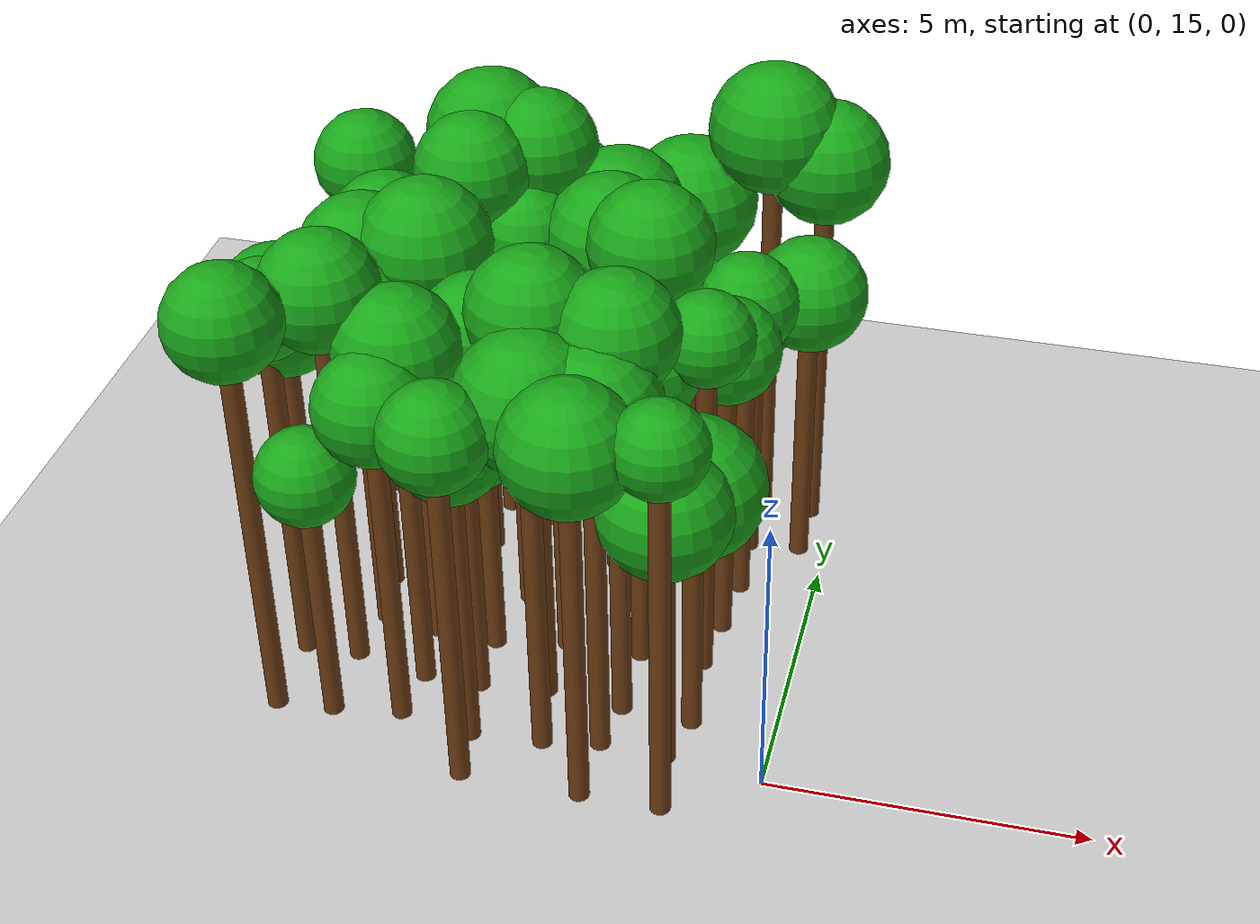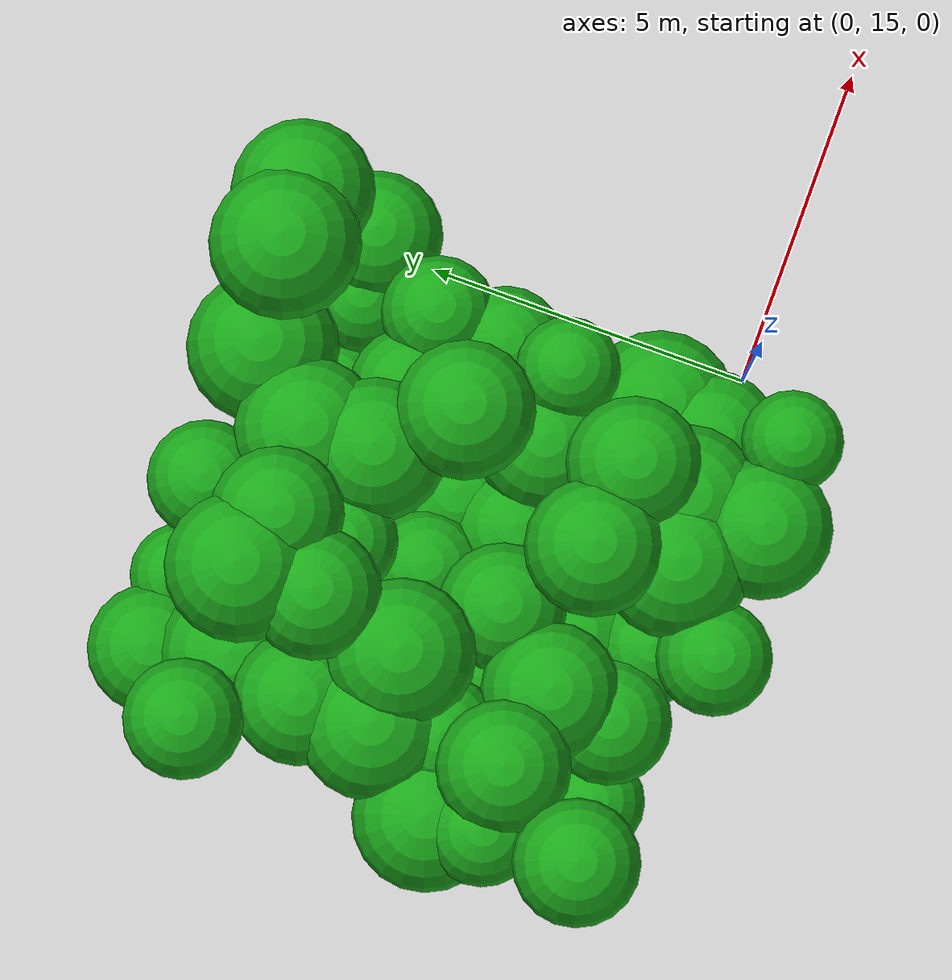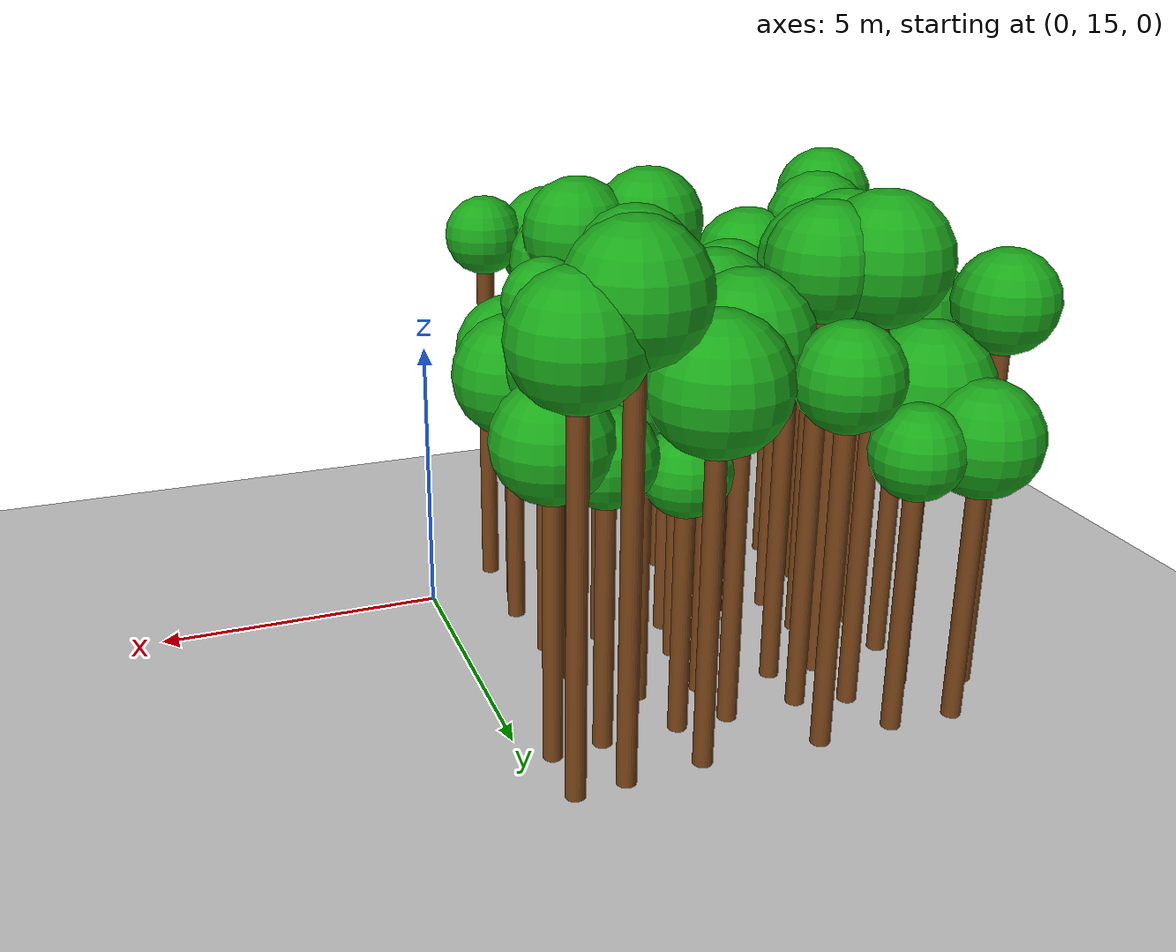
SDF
<sdf version="1.6">
 <world name="forest_world">
  <include><uri>model://sun</uri></include>
  <include><uri>model://ground_plane</uri></include>
  <model name="tree_1141_trunk">
   <static>true</static>
   <pose>-7.84 15.01 3.36 0 0 0</pose>
   <link name="link">
    <collision name="collision">
     <geometry><cylinder><radius>0.16</radius><length>6.73</length></cylinder></geometry>
    </collision>
    <visual name="visual">
     <geometry><cylinder><radius>0.16</radius><length>6.73</length></cylinder></geometry>
     <material><ambient>0.35 0.20 0.05 1</ambient><diffuse>0.45 0.25 0.08 1</diffuse></material>
    </visual>
   </link>
  </model>
  <model name="tree_1141_leaf">
   <static>true</static>
   <pose>-7.84 15.01 7.26 0 0 0</pose>
   <link name="link">
    <collision name="collision"><geometry><sphere><radius>0.88</radius></sphere></geometry></collision>
    <visual name="visual">
     <geometry><sphere><radius>0.88</radius></sphere></geometry>
     <material><ambient>0.05 0.45 0.05 1</ambient><diffuse>0.10 0.65 0.10 1</diffuse></material>
    </visual>
   </link>
  </model>
  <model name="tree_1142_trunk">
   <static>true</static>
   <pose>-7.85 16.36 3.07 0 0 0</pose>
   <link name="link">
    <collision name="collision">
     <geometry><cylinder><radius>0.16</radius><length>6.15</length></cylinder></geometry>
    </collision>
    <visual name="visual">
     <geometry><cylinder><radius>0.16</radius><length>6.15</length></cylinder></geometry>
     <material><ambient>0.35 0.20 0.05 1</ambient><diffuse>0.45 0.25 0.08 1</diffuse></material>
    </visual>
   </link>
  </model>
  <model name="tree_1142_leaf">
   <static>true</static>
   <pose>-7.85 16.36 6.61 0 0 0</pose>
   <link name="link">
    <collision name="collision"><geometry><sphere><radius>0.78</radius></sphere></geometry></collision>
    <visual name="visual">
     <geometry><sphere><radius>0.78</radius></sphere></geometry>
     <material><ambient>0.05 0.45 0.05 1</ambient><diffuse>0.10 0.65 0.10 1</diffuse></material>
    </visual>
   </link>
  </model>
  <model name="tree_1143_trunk">
   <static>true</static>
   <pose>-7.94 17.15 2.73 0 0 0</pose>
   <link name="link">
    <collision name="collision">
     <geometry><cylinder><radius>0.16</radius><length>5.45</length></cylinder></geometry>
    </collision>
    <visual name="visual">
     <geometry><cylinder><radius>0.16</radius><length>5.45</length></cylinder></geometry>
     <material><ambient>0.35 0.20 0.05 1</ambient><diffuse>0.45 0.25 0.08 1</diffuse></material>
    </visual>
   </link>
  </model>
  <model name="tree_1143_leaf">
   <static>true</static>
   <pose>-7.94 17.15 6.08 0 0 0</pose>
   <link name="link">
    <collision name="collision"><geometry><sphere><radius>1.04</radius></sphere></geometry></collision>
    <visual name="visual">
     <geometry><sphere><radius>1.04</radius></sphere></geometry>
     <material><ambient>0.05 0.45 0.05 1</ambient><diffuse>0.10 0.65 0.10 1</diffuse></material>
    </visual>
   </link>
  </model>
  <model name="tree_1146_trunk">
   <static>true</static>
   <pose>-7.82 20.73 3.08 0 0 0</pose>
   <link name="link">
    <collision name="collision">
     <geometry><cylinder><radius>0.16</radius><length>6.17</length></cylinder></geometry>
    </collision>
    <visual name="visual">
     <geometry><cylinder><radius>0.16</radius><length>6.17</length></cylinder></geometry>
     <material><ambient>0.35 0.20 0.05 1</ambient><diffuse>0.45 0.25 0.08 1</diffuse></material>
    </visual>
   </link>
  </model>
  <model name="tree_1146_leaf">
   <static>true</static>
   <pose>-7.82 20.73 6.67 0 0 0</pose>
   <link name="link">
    <collision name="collision"><geometry><sphere><radius>0.84</radius></sphere></geometry></collision>
    <visual name="visual">
     <geometry><sphere><radius>0.84</radius></sphere></geometry>
     <material><ambient>0.05 0.45 0.05 1</ambient><diffuse>0.10 0.65 0.10 1</diffuse></material>
    </visual>
   </link>
  </model>
  <model name="tree_1196_trunk">
   <static>true</static>
   <pose>-6.92 15.07 2.10 0 0 0</pose>
   <link name="link">
    <collision name="collision">
     <geometry><cylinder><radius>0.16</radius><length>4.20</length></cylinder></geometry>
    </collision>
    <visual name="visual">
     <geometry><cylinder><radius>0.16</radius><length>4.20</length></cylinder></geometry>
     <material><ambient>0.35 0.20 0.05 1</ambient><diffuse>0.45 0.25 0.08 1</diffuse></material>
    </visual>
   </link>
  </model>
  <model name="tree_1196_leaf">
   <static>true</static>
   <pose>-6.92 15.07 4.66 0 0 0</pose>
   <link name="link">
    <collision name="collision"><geometry><sphere><radius>0.76</radius></sphere></geometry></collision>
    <visual name="visual">
     <geometry><sphere><radius>0.76</radius></sphere></geometry>
     <material><ambient>0.05 0.45 0.05 1</ambient><diffuse>0.10 0.65 0.10 1</diffuse></material>
    </visual>
   </link>
  </model>
  <model name="tree_1197_trunk">
   <static>true</static>
   <pose>-6.96 16.38 3.24 0 0 0</pose>
   <link name="link">
    <collision name="collision">
     <geometry><cylinder><radius>0.16</radius><length>6.49</length></cylinder></geometry>
    </collision>
    <visual name="visual">
     <geometry><cylinder><radius>0.16</radius><length>6.49</length></cylinder></geometry>
     <material><ambient>0.35 0.20 0.05 1</ambient><diffuse>0.45 0.25 0.08 1</diffuse></material>
    </visual>
   </link>
  </model>
  <model name="tree_1197_leaf">
   <static>true</static>
   <pose>-6.96 16.38 7.05 0 0 0</pose>
   <link name="link">
    <collision name="collision"><geometry><sphere><radius>0.93</radius></sphere></geometry></collision>
    <visual name="visual">
     <geometry><sphere><radius>0.93</radius></sphere></geometry>
     <material><ambient>0.05 0.45 0.05 1</ambient><diffuse>0.10 0.65 0.10 1</diffuse></material>
    </visual>
   </link>
  </model>
  <model name="tree_1198_trunk">
   <static>true</static>
   <pose>-6.82 17.35 2.87 0 0 0</pose>
   <link name="link">
    <collision name="collision">
     <geometry><cylinder><radius>0.16</radius><length>5.75</length></cylinder></geometry>
    </collision>
    <visual name="visual">
     <geometry><cylinder><radius>0.16</radius><length>5.75</length></cylinder></geometry>
     <material><ambient>0.35 0.20 0.05 1</ambient><diffuse>0.45 0.25 0.08 1</diffuse></material>
    </visual>
   </link>
  </model>
  <model name="tree_1198_leaf">
   <static>true</static>
   <pose>-6.82 17.35 6.26 0 0 0</pose>
   <link name="link">
    <collision name="collision"><geometry><sphere><radius>0.85</radius></sphere></geometry></collision>
    <visual name="visual">
     <geometry><sphere><radius>0.85</radius></sphere></geometry>
     <material><ambient>0.05 0.45 0.05 1</ambient><diffuse>0.10 0.65 0.10 1</diffuse></material>
    </visual>
   </link>
  </model>
  <model name="tree_1199_trunk">
   <static>true</static>
   <pose>-7.01 18.27 2.90 0 0 0</pose>
   <link name="link">
    <collision name="collision">
     <geometry><cylinder><radius>0.16</radius><length>5.80</length></cylinder></geometry>
    </collision>
    <visual name="visual">
     <geometry><cylinder><radius>0.16</radius><length>5.80</length></cylinder></geometry>
     <material><ambient>0.35 0.20 0.05 1</ambient><diffuse>0.45 0.25 0.08 1</diffuse></material>
    </visual>
   </link>
  </model>
  <model name="tree_1199_leaf">
   <static>true</static>
   <pose>-7.01 18.27 6.43 0 0 0</pose>
   <link name="link">
    <collision name="collision"><geometry><sphere><radius>1.05</radius></sphere></geometry></collision>
    <visual name="visual">
     <geometry><sphere><radius>1.05</radius></sphere></geometry>
     <material><ambient>0.05 0.45 0.05 1</ambient><diffuse>0.10 0.65 0.10 1</diffuse></material>
    </visual>
   </link>
  </model>
  <model name="tree_1200_trunk">
   <static>true</static>
   <pose>-7.00 19.35 2.88 0 0 0</pose>
   <link name="link">
    <collision name="collision">
     <geometry><cylinder><radius>0.16</radius><length>5.75</length></cylinder></geometry>
    </collision>
    <visual name="visual">
     <geometry><cylinder><radius>0.16</radius><length>5.75</length></cylinder></geometry>
     <material><ambient>0.35 0.20 0.05 1</ambient><diffuse>0.45 0.25 0.08 1</diffuse></material>
    </visual>
   </link>
  </model>
  <model name="tree_1200_leaf">
   <static>true</static>
   <pose>-7.00 19.35 6.31 0 0 0</pose>
   <link name="link">
    <collision name="collision"><geometry><sphere><radius>0.94</radius></sphere></geometry></collision>
    <visual name="visual">
     <geometry><sphere><radius>0.94</radius></sphere></geometry>
     <material><ambient>0.05 0.45 0.05 1</ambient><diffuse>0.10 0.65 0.10 1</diffuse></material>
    </visual>
   </link>
  </model>
  <model name="tree_1201_trunk">
   <static>true</static>
   <pose>-6.72 20.47 2.33 0 0 0</pose>
   <link name="link">
    <collision name="collision">
     <geometry><cylinder><radius>0.16</radius><length>4.67</length></cylinder></geometry>
    </collision>
    <visual name="visual">
     <geometry><cylinder><radius>0.16</radius><length>4.67</length></cylinder></geometry>
     <material><ambient>0.35 0.20 0.05 1</ambient><diffuse>0.45 0.25 0.08 1</diffuse></material>
    </visual>
   </link>
  </model>
  <model name="tree_1201_leaf">
   <static>true</static>
   <pose>-6.72 20.47 5.32 0 0 0</pose>
   <link name="link">
    <collision name="collision"><geometry><sphere><radius>1.08</radius></sphere></geometry></collision>
    <visual name="visual">
     <geometry><sphere><radius>1.08</radius></sphere></geometry>
     <material><ambient>0.05 0.45 0.05 1</ambient><diffuse>0.10 0.65 0.10 1</diffuse></material>
    </visual>
   </link>
  </model>
  <model name="tree_1202_trunk">
   <static>true</static>
   <pose>-7.01 21.62 2.14 0 0 0</pose>
   <link name="link">
    <collision name="collision">
     <geometry><cylinder><radius>0.16</radius><length>4.28</length></cylinder></geometry>
    </collision>
    <visual name="visual">
     <geometry><cylinder><radius>0.16</radius><length>4.28</length></cylinder></geometry>
     <material><ambient>0.35 0.20 0.05 1</ambient><diffuse>0.45 0.25 0.08 1</diffuse></material>
    </visual>
   </link>
  </model>
  <model name="tree_1202_leaf">
   <static>true</static>
   <pose>-7.01 21.62 4.83 0 0 0</pose>
   <link name="link">
    <collision name="collision"><geometry><sphere><radius>0.93</radius></sphere></geometry></collision>
    <visual name="visual">
     <geometry><sphere><radius>0.93</radius></sphere></geometry>
     <material><ambient>0.05 0.45 0.05 1</ambient><diffuse>0.10 0.65 0.10 1</diffuse></material>
    </visual>
   </link>
  </model>
  <model name="tree_1251_trunk">
   <static>true</static>
   <pose>-5.84 15.23 2.72 0 0 0</pose>
   <link name="link">
    <collision name="collision">
     <geometry><cylinder><radius>0.16</radius><length>5.44</length></cylinder></geometry>
    </collision>
    <visual name="visual">
     <geometry><cylinder><radius>0.16</radius><length>5.44</length></cylinder></geometry>
     <material><ambient>0.35 0.20 0.05 1</ambient><diffuse>0.45 0.25 0.08 1</diffuse></material>
    </visual>
   </link>
  </model>
  <model name="tree_1251_leaf">
   <static>true</static>
   <pose>-5.84 15.23 5.97 0 0 0</pose>
   <link name="link">
    <collision name="collision"><geometry><sphere><radius>0.88</radius></sphere></geometry></collision>
    <visual name="visual">
     <geometry><sphere><radius>0.88</radius></sphere></geometry>
     <material><ambient>0.05 0.45 0.05 1</ambient><diffuse>0.10 0.65 0.10 1</diffuse></material>
    </visual>
   </link>
  </model>
  <model name="tree_1252_trunk">
   <static>true</static>
   <pose>-5.74 16.13 2.91 0 0 0</pose>
   <link name="link">
    <collision name="collision">
     <geometry><cylinder><radius>0.16</radius><length>5.82</length></cylinder></geometry>
    </collision>
    <visual name="visual">
     <geometry><cylinder><radius>0.16</radius><length>5.82</length></cylinder></geometry>
     <material><ambient>0.35 0.20 0.05 1</ambient><diffuse>0.45 0.25 0.08 1</diffuse></material>
    </visual>
   </link>
  </model>
  <model name="tree_1252_leaf">
   <static>true</static>
   <pose>-5.74 16.13 6.40 0 0 0</pose>
   <link name="link">
    <collision name="collision"><geometry><sphere><radius>0.97</radius></sphere></geometry></collision>
    <visual name="visual">
     <geometry><sphere><radius>0.97</radius></sphere></geometry>
     <material><ambient>0.05 0.45 0.05 1</ambient><diffuse>0.10 0.65 0.10 1</diffuse></material>
    </visual>
   </link>
  </model>
  <model name="tree_1253_trunk">
   <static>true</static>
   <pose>-5.88 17.20 2.18 0 0 0</pose>
   <link name="link">
    <collision name="collision">
     <geometry><cylinder><radius>0.16</radius><length>4.36</length></cylinder></geometry>
    </collision>
    <visual name="visual">
     <geometry><cylinder><radius>0.16</radius><length>4.36</length></cylinder></geometry>
     <material><ambient>0.35 0.20 0.05 1</ambient><diffuse>0.45 0.25 0.08 1</diffuse></material>
    </visual>
   </link>
  </model>
  <model name="tree_1253_leaf">
   <static>true</static>
   <pose>-5.88 17.20 4.79 0 0 0</pose>
   <link name="link">
    <collision name="collision"><geometry><sphere><radius>0.73</radius></sphere></geometry></collision>
    <visual name="visual">
     <geometry><sphere><radius>0.73</radius></sphere></geometry>
     <material><ambient>0.05 0.45 0.05 1</ambient><diffuse>0.10 0.65 0.10 1</diffuse></material>
    </visual>
   </link>
  </model>
  <model name="tree_1254_trunk">
   <static>true</static>
   <pose>-5.97 18.23 3.13 0 0 0</pose>
   <link name="link">
    <collision name="collision">
     <geometry><cylinder><radius>0.16</radius><length>6.25</length></cylinder></geometry>
    </collision>
    <visual name="visual">
     <geometry><cylinder><radius>0.16</radius><length>6.25</length></cylinder></geometry>
     <material><ambient>0.35 0.20 0.05 1</ambient><diffuse>0.45 0.25 0.08 1</diffuse></material>
    </visual>
   </link>
  </model>
  <model name="tree_1254_leaf">
   <static>true</static>
   <pose>-5.97 18.23 6.87 0 0 0</pose>
   <link name="link">
    <collision name="collision"><geometry><sphere><radius>1.04</radius></sphere></geometry></collision>
    <visual name="visual">
     <geometry><sphere><radius>1.04</radius></sphere></geometry>
     <material><ambient>0.05 0.45 0.05 1</ambient><diffuse>0.10 0.65 0.10 1</diffuse></material>
    </visual>
   </link>
  </model>
  <model name="tree_1255_trunk">
   <static>true</static>
   <pose>-5.62 19.59 3.43 0 0 0</pose>
   <link name="link">
    <collision name="collision">
     <geometry><cylinder><radius>0.16</radius><length>6.86</length></cylinder></geometry>
    </collision>
    <visual name="visual">
     <geometry><cylinder><radius>0.16</radius><length>6.86</length></cylinder></geometry>
     <material><ambient>0.35 0.20 0.05 1</ambient><diffuse>0.45 0.25 0.08 1</diffuse></material>
    </visual>
   </link>
  </model>
  <model name="tree_1255_leaf">
   <static>true</static>
   <pose>-5.62 19.59 7.42 0 0 0</pose>
   <link name="link">
    <collision name="collision"><geometry><sphere><radius>0.92</radius></sphere></geometry></collision>
    <visual name="visual">
     <geometry><sphere><radius>0.92</radius></sphere></geometry>
     <material><ambient>0.05 0.45 0.05 1</ambient><diffuse>0.10 0.65 0.10 1</diffuse></material>
    </visual>
   </link>
  </model>
  <model name="tree_1256_trunk">
   <static>true</static>
   <pose>-5.63 20.66 3.44 0 0 0</pose>
   <link name="link">
    <collision name="collision">
     <geometry><cylinder><radius>0.16</radius><length>6.88</length></cylinder></geometry>
    </collision>
    <visual name="visual">
     <geometry><cylinder><radius>0.16</radius><length>6.88</length></cylinder></geometry>
     <material><ambient>0.35 0.20 0.05 1</ambient><diffuse>0.45 0.25 0.08 1</diffuse></material>
    </visual>
   </link>
  </model>
  <model name="tree_1256_leaf">
   <static>true</static>
   <pose>-5.63 20.66 7.50 0 0 0</pose>
   <link name="link">
    <collision name="collision"><geometry><sphere><radius>1.04</radius></sphere></geometry></collision>
    <visual name="visual">
     <geometry><sphere><radius>1.04</radius></sphere></geometry>
     <material><ambient>0.05 0.45 0.05 1</ambient><diffuse>0.10 0.65 0.10 1</diffuse></material>
    </visual>
   </link>
  </model>
  <model name="tree_1257_trunk">
   <static>true</static>
   <pose>-5.89 21.59 2.15 0 0 0</pose>
   <link name="link">
    <collision name="collision">
     <geometry><cylinder><radius>0.16</radius><length>4.30</length></cylinder></geometry>
    </collision>
    <visual name="visual">
     <geometry><cylinder><radius>0.16</radius><length>4.30</length></cylinder></geometry>
     <material><ambient>0.35 0.20 0.05 1</ambient><diffuse>0.45 0.25 0.08 1</diffuse></material>
    </visual>
   </link>
  </model>
  <model name="tree_1257_leaf">
   <static>true</static>
   <pose>-5.89 21.59 4.75 0 0 0</pose>
   <link name="link">
    <collision name="collision"><geometry><sphere><radius>0.75</radius></sphere></geometry></collision>
    <visual name="visual">
     <geometry><sphere><radius>0.75</radius></sphere></geometry>
     <material><ambient>0.05 0.45 0.05 1</ambient><diffuse>0.10 0.65 0.10 1</diffuse></material>
    </visual>
   </link>
  </model>
  <model name="tree_1305_trunk">
   <static>true</static>
   <pose>-4.54 14.17 2.98 0 0 0</pose>
   <link name="link">
    <collision name="collision">
     <geometry><cylinder><radius>0.16</radius><length>5.96</length></cylinder></geometry>
    </collision>
    <visual name="visual">
     <geometry><cylinder><radius>0.16</radius><length>5.96</length></cylinder></geometry>
     <material><ambient>0.35 0.20 0.05 1</ambient><diffuse>0.45 0.25 0.08 1</diffuse></material>
    </visual>
   </link>
  </model>
  <model name="tree_1305_leaf">
   <static>true</static>
   <pose>-4.54 14.17 6.44 0 0 0</pose>
   <link name="link">
    <collision name="collision"><geometry><sphere><radius>0.81</radius></sphere></geometry></collision>
    <visual name="visual">
     <geometry><sphere><radius>0.81</radius></sphere></geometry>
     <material><ambient>0.05 0.45 0.05 1</ambient><diffuse>0.10 0.65 0.10 1</diffuse></material>
    </visual>
   </link>
  </model>
  <model name="tree_1306_trunk">
   <static>true</static>
   <pose>-4.64 15.02 2.55 0 0 0</pose>
   <link name="link">
    <collision name="collision">
     <geometry><cylinder><radius>0.16</radius><length>5.10</length></cylinder></geometry>
    </collision>
    <visual name="visual">
     <geometry><cylinder><radius>0.16</radius><length>5.10</length></cylinder></geometry>
     <material><ambient>0.35 0.20 0.05 1</ambient><diffuse>0.45 0.25 0.08 1</diffuse></material>
    </visual>
   </link>
  </model>
  <model name="tree_1306_leaf">
   <static>true</static>
   <pose>-4.64 15.02 5.58 0 0 0</pose>
   <link name="link">
    <collision name="collision"><geometry><sphere><radius>0.81</radius></sphere></geometry></collision>
    <visual name="visual">
     <geometry><sphere><radius>0.81</radius></sphere></geometry>
     <material><ambient>0.05 0.45 0.05 1</ambient><diffuse>0.10 0.65 0.10 1</diffuse></material>
    </visual>
   </link>
  </model>
  <model name="tree_1307_trunk">
   <static>true</static>
   <pose>-4.82 16.11 2.29 0 0 0</pose>
   <link name="link">
    <collision name="collision">
     <geometry><cylinder><radius>0.16</radius><length>4.58</length></cylinder></geometry>
    </collision>
    <visual name="visual">
     <geometry><cylinder><radius>0.16</radius><length>4.58</length></cylinder></geometry>
     <material><ambient>0.35 0.20 0.05 1</ambient><diffuse>0.45 0.25 0.08 1</diffuse></material>
    </visual>
   </link>
  </model>
  <model name="tree_1307_leaf">
   <static>true</static>
   <pose>-4.82 16.11 5.20 0 0 0</pose>
   <link name="link">
    <collision name="collision"><geometry><sphere><radius>1.04</radius></sphere></geometry></collision>
    <visual name="visual">
     <geometry><sphere><radius>1.04</radius></sphere></geometry>
     <material><ambient>0.05 0.45 0.05 1</ambient><diffuse>0.10 0.65 0.10 1</diffuse></material>
    </visual>
   </link>
  </model>
  <model name="tree_1308_trunk">
   <static>true</static>
   <pose>-4.86 17.15 2.82 0 0 0</pose>
   <link name="link">
    <collision name="collision">
     <geometry><cylinder><radius>0.16</radius><length>5.64</length></cylinder></geometry>
    </collision>
    <visual name="visual">
     <geometry><cylinder><radius>0.16</radius><length>5.64</length></cylinder></geometry>
     <material><ambient>0.35 0.20 0.05 1</ambient><diffuse>0.45 0.25 0.08 1</diffuse></material>
    </visual>
   </link>
  </model>
  <model name="tree_1308_leaf">
   <static>true</static>
   <pose>-4.86 17.15 6.18 0 0 0</pose>
   <link name="link">
    <collision name="collision"><geometry><sphere><radius>0.90</radius></sphere></geometry></collision>
    <visual name="visual">
     <geometry><sphere><radius>0.90</radius></sphere></geometry>
     <material><ambient>0.05 0.45 0.05 1</ambient><diffuse>0.10 0.65 0.10 1</diffuse></material>
    </visual>
   </link>
  </model>
  <model name="tree_1309_trunk">
   <static>true</static>
   <pose>-4.64 18.36 2.43 0 0 0</pose>
   <link name="link">
    <collision name="collision">
     <geometry><cylinder><radius>0.16</radius><length>4.86</length></cylinder></geometry>
    </collision>
    <visual name="visual">
     <geometry><cylinder><radius>0.16</radius><length>4.86</length></cylinder></geometry>
     <material><ambient>0.35 0.20 0.05 1</ambient><diffuse>0.45 0.25 0.08 1</diffuse></material>
    </visual>
   </link>
  </model>
  <model name="tree_1309_leaf">
   <static>true</static>
   <pose>-4.64 18.36 5.34 0 0 0</pose>
   <link name="link">
    <collision name="collision"><geometry><sphere><radius>0.81</radius></sphere></geometry></collision>
    <visual name="visual">
     <geometry><sphere><radius>0.81</radius></sphere></geometry>
     <material><ambient>0.05 0.45 0.05 1</ambient><diffuse>0.10 0.65 0.10 1</diffuse></material>
    </visual>
   </link>
  </model>
  <model name="tree_1310_trunk">
   <static>true</static>
   <pose>-4.77 19.54 3.00 0 0 0</pose>
   <link name="link">
    <collision name="collision">
     <geometry><cylinder><radius>0.16</radius><length>5.99</length></cylinder></geometry>
    </collision>
    <visual name="visual">
     <geometry><cylinder><radius>0.16</radius><length>5.99</length></cylinder></geometry>
     <material><ambient>0.35 0.20 0.05 1</ambient><diffuse>0.45 0.25 0.08 1</diffuse></material>
    </visual>
   </link>
  </model>
  <model name="tree_1310_leaf">
   <static>true</static>
   <pose>-4.77 19.54 6.46 0 0 0</pose>
   <link name="link">
    <collision name="collision"><geometry><sphere><radius>0.78</radius></sphere></geometry></collision>
    <visual name="visual">
     <geometry><sphere><radius>0.78</radius></sphere></geometry>
     <material><ambient>0.05 0.45 0.05 1</ambient><diffuse>0.10 0.65 0.10 1</diffuse></material>
    </visual>
   </link>
  </model>
  <model name="tree_1311_trunk">
   <static>true</static>
   <pose>-4.78 20.44 3.46 0 0 0</pose>
   <link name="link">
    <collision name="collision">
     <geometry><cylinder><radius>0.16</radius><length>6.93</length></cylinder></geometry>
    </collision>
    <visual name="visual">
     <geometry><cylinder><radius>0.16</radius><length>6.93</length></cylinder></geometry>
     <material><ambient>0.35 0.20 0.05 1</ambient><diffuse>0.45 0.25 0.08 1</diffuse></material>
    </visual>
   </link>
  </model>
  <model name="tree_1311_leaf">
   <static>true</static>
   <pose>-4.78 20.44 7.48 0 0 0</pose>
   <link name="link">
    <collision name="collision"><geometry><sphere><radius>0.92</radius></sphere></geometry></collision>
    <visual name="visual">
     <geometry><sphere><radius>0.92</radius></sphere></geometry>
     <material><ambient>0.05 0.45 0.05 1</ambient><diffuse>0.10 0.65 0.10 1</diffuse></material>
    </visual>
   </link>
  </model>
  <model name="tree_1312_trunk">
   <static>true</static>
   <pose>-4.58 21.63 2.80 0 0 0</pose>
   <link name="link">
    <collision name="collision">
     <geometry><cylinder><radius>0.16</radius><length>5.59</length></cylinder></geometry>
    </collision>
    <visual name="visual">
     <geometry><cylinder><radius>0.16</radius><length>5.59</length></cylinder></geometry>
     <material><ambient>0.35 0.20 0.05 1</ambient><diffuse>0.45 0.25 0.08 1</diffuse></material>
    </visual>
   </link>
  </model>
  <model name="tree_1312_leaf">
   <static>true</static>
   <pose>-4.58 21.63 6.09 0 0 0</pose>
   <link name="link">
    <collision name="collision"><geometry><sphere><radius>0.83</radius></sphere></geometry></collision>
    <visual name="visual">
     <geometry><sphere><radius>0.83</radius></sphere></geometry>
     <material><ambient>0.05 0.45 0.05 1</ambient><diffuse>0.10 0.65 0.10 1</diffuse></material>
    </visual>
   </link>
  </model>
  <model name="tree_1361_trunk">
   <static>true</static>
   <pose>-3.50 15.11 2.96 0 0 0</pose>
   <link name="link">
    <collision name="collision">
     <geometry><cylinder><radius>0.16</radius><length>5.93</length></cylinder></geometry>
    </collision>
    <visual name="visual">
     <geometry><cylinder><radius>0.16</radius><length>5.93</length></cylinder></geometry>
     <material><ambient>0.35 0.20 0.05 1</ambient><diffuse>0.45 0.25 0.08 1</diffuse></material>
    </visual>
   </link>
  </model>
  <model name="tree_1361_leaf">
   <static>true</static>
   <pose>-3.50 15.11 6.57 0 0 0</pose>
   <link name="link">
    <collision name="collision"><geometry><sphere><radius>1.06</radius></sphere></geometry></collision>
    <visual name="visual">
     <geometry><sphere><radius>1.06</radius></sphere></geometry>
     <material><ambient>0.05 0.45 0.05 1</ambient><diffuse>0.10 0.65 0.10 1</diffuse></material>
    </visual>
   </link>
  </model>
  <model name="tree_1362_trunk">
   <static>true</static>
   <pose>-3.73 16.24 3.35 0 0 0</pose>
   <link name="link">
    <collision name="collision">
     <geometry><cylinder><radius>0.16</radius><length>6.71</length></cylinder></geometry>
    </collision>
    <visual name="visual">
     <geometry><cylinder><radius>0.16</radius><length>6.71</length></cylinder></geometry>
     <material><ambient>0.35 0.20 0.05 1</ambient><diffuse>0.45 0.25 0.08 1</diffuse></material>
    </visual>
   </link>
  </model>
  <model name="tree_1362_leaf">
   <static>true</static>
   <pose>-3.73 16.24 7.28 0 0 0</pose>
   <link name="link">
    <collision name="collision"><geometry><sphere><radius>0.96</radius></sphere></geometry></collision>
    <visual name="visual">
     <geometry><sphere><radius>0.96</radius></sphere></geometry>
     <material><ambient>0.05 0.45 0.05 1</ambient><diffuse>0.10 0.65 0.10 1</diffuse></material>
    </visual>
   </link>
  </model>
  <model name="tree_1363_trunk">
   <static>true</static>
   <pose>-3.71 17.37 2.32 0 0 0</pose>
   <link name="link">
    <collision name="collision">
     <geometry><cylinder><radius>0.16</radius><length>4.64</length></cylinder></geometry>
    </collision>
    <visual name="visual">
     <geometry><cylinder><radius>0.16</radius><length>4.64</length></cylinder></geometry>
     <material><ambient>0.35 0.20 0.05 1</ambient><diffuse>0.45 0.25 0.08 1</diffuse></material>
    </visual>
   </link>
  </model>
  <model name="tree_1363_leaf">
   <static>true</static>
   <pose>-3.71 17.37 5.19 0 0 0</pose>
   <link name="link">
    <collision name="collision"><geometry><sphere><radius>0.91</radius></sphere></geometry></collision>
    <visual name="visual">
     <geometry><sphere><radius>0.91</radius></sphere></geometry>
     <material><ambient>0.05 0.45 0.05 1</ambient><diffuse>0.10 0.65 0.10 1</diffuse></material>
    </visual>
   </link>
  </model>
  <model name="tree_1364_trunk">
   <static>true</static>
   <pose>-3.49 18.31 2.00 0 0 0</pose>
   <link name="link">
    <collision name="collision">
     <geometry><cylinder><radius>0.16</radius><length>4.01</length></cylinder></geometry>
    </collision>
    <visual name="visual">
     <geometry><cylinder><radius>0.16</radius><length>4.01</length></cylinder></geometry>
     <material><ambient>0.35 0.20 0.05 1</ambient><diffuse>0.45 0.25 0.08 1</diffuse></material>
    </visual>
   </link>
  </model>
  <model name="tree_1364_leaf">
   <static>true</static>
   <pose>-3.49 18.31 4.67 0 0 0</pose>
   <link name="link">
    <collision name="collision"><geometry><sphere><radius>1.10</radius></sphere></geometry></collision>
    <visual name="visual">
     <geometry><sphere><radius>1.10</radius></sphere></geometry>
     <material><ambient>0.05 0.45 0.05 1</ambient><diffuse>0.10 0.65 0.10 1</diffuse></material>
    </visual>
   </link>
  </model>
  <model name="tree_1365_trunk">
   <static>true</static>
   <pose>-3.44 19.54 2.98 0 0 0</pose>
   <link name="link">
    <collision name="collision">
     <geometry><cylinder><radius>0.16</radius><length>5.96</length></cylinder></geometry>
    </collision>
    <visual name="visual">
     <geometry><cylinder><radius>0.16</radius><length>5.96</length></cylinder></geometry>
     <material><ambient>0.35 0.20 0.05 1</ambient><diffuse>0.45 0.25 0.08 1</diffuse></material>
    </visual>
   </link>
  </model>
  <model name="tree_1365_leaf">
   <static>true</static>
   <pose>-3.44 19.54 6.57 0 0 0</pose>
   <link name="link">
    <collision name="collision"><geometry><sphere><radius>1.01</radius></sphere></geometry></collision>
    <visual name="visual">
     <geometry><sphere><radius>1.01</radius></sphere></geometry>
     <material><ambient>0.05 0.45 0.05 1</ambient><diffuse>0.10 0.65 0.10 1</diffuse></material>
    </visual>
   </link>
  </model>
  <model name="tree_1366_trunk">
   <static>true</static>
   <pose>-3.50 20.50 2.92 0 0 0</pose>
   <link name="link">
    <collision name="collision">
     <geometry><cylinder><radius>0.16</radius><length>5.84</length></cylinder></geometry>
    </collision>
    <visual name="visual">
     <geometry><cylinder><radius>0.16</radius><length>5.84</length></cylinder></geometry>
     <material><ambient>0.35 0.20 0.05 1</ambient><diffuse>0.45 0.25 0.08 1</diffuse></material>
    </visual>
   </link>
  </model>
  <model name="tree_1366_leaf">
   <static>true</static>
   <pose>-3.50 20.50 6.46 0 0 0</pose>
   <link name="link">
    <collision name="collision"><geometry><sphere><radius>1.04</radius></sphere></geometry></collision>
    <visual name="visual">
     <geometry><sphere><radius>1.04</radius></sphere></geometry>
     <material><ambient>0.05 0.45 0.05 1</ambient><diffuse>0.10 0.65 0.10 1</diffuse></material>
    </visual>
   </link>
  </model>
  <model name="tree_1412_trunk">
   <static>true</static>
   <pose>-2.65 14.16 3.00 0 0 0</pose>
   <link name="link">
    <collision name="collision">
     <geometry><cylinder><radius>0.16</radius><length>6.00</length></cylinder></geometry>
    </collision>
    <visual name="visual">
     <geometry><cylinder><radius>0.16</radius><length>6.00</length></cylinder></geometry>
     <material><ambient>0.35 0.20 0.05 1</ambient><diffuse>0.45 0.25 0.08 1</diffuse></material>
    </visual>
   </link>
  </model>
  <model name="tree_1412_leaf">
   <static>true</static>
   <pose>-2.65 14.16 6.59 0 0 0</pose>
   <link name="link">
    <collision name="collision"><geometry><sphere><radius>0.99</radius></sphere></geometry></collision>
    <visual name="visual">
     <geometry><sphere><radius>0.99</radius></sphere></geometry>
     <material><ambient>0.05 0.45 0.05 1</ambient><diffuse>0.10 0.65 0.10 1</diffuse></material>
    </visual>
   </link>
  </model>
  <model name="tree_1413_trunk">
   <static>true</static>
   <pose>-2.61 15.27 2.90 0 0 0</pose>
   <link name="link">
    <collision name="collision">
     <geometry><cylinder><radius>0.16</radius><length>5.80</length></cylinder></geometry>
    </collision>
    <visual name="visual">
     <geometry><cylinder><radius>0.16</radius><length>5.80</length></cylinder></geometry>
     <material><ambient>0.35 0.20 0.05 1</ambient><diffuse>0.45 0.25 0.08 1</diffuse></material>
    </visual>
   </link>
  </model>
  <model name="tree_1413_leaf">
   <static>true</static>
   <pose>-2.61 15.27 6.43 0 0 0</pose>
   <link name="link">
    <collision name="collision"><geometry><sphere><radius>1.05</radius></sphere></geometry></collision>
    <visual name="visual">
     <geometry><sphere><radius>1.05</radius></sphere></geometry>
     <material><ambient>0.05 0.45 0.05 1</ambient><diffuse>0.10 0.65 0.10 1</diffuse></material>
    </visual>
   </link>
  </model>
  <model name="tree_1414_trunk">
   <static>true</static>
   <pose>-2.47 16.11 3.31 0 0 0</pose>
   <link name="link">
    <collision name="collision">
     <geometry><cylinder><radius>0.16</radius><length>6.61</length></cylinder></geometry>
    </collision>
    <visual name="visual">
     <geometry><cylinder><radius>0.16</radius><length>6.61</length></cylinder></geometry>
     <material><ambient>0.35 0.20 0.05 1</ambient><diffuse>0.45 0.25 0.08 1</diffuse></material>
    </visual>
   </link>
  </model>
  <model name="tree_1414_leaf">
   <static>true</static>
   <pose>-2.47 16.11 7.18 0 0 0</pose>
   <link name="link">
    <collision name="collision"><geometry><sphere><radius>0.94</radius></sphere></geometry></collision>
    <visual name="visual">
     <geometry><sphere><radius>0.94</radius></sphere></geometry>
     <material><ambient>0.05 0.45 0.05 1</ambient><diffuse>0.10 0.65 0.10 1</diffuse></material>
    </visual>
   </link>
  </model>
  <model name="tree_1415_trunk">
   <static>true</static>
   <pose>-2.47 17.39 2.60 0 0 0</pose>
   <link name="link">
    <collision name="collision">
     <geometry><cylinder><radius>0.16</radius><length>5.20</length></cylinder></geometry>
    </collision>
    <visual name="visual">
     <geometry><cylinder><radius>0.16</radius><length>5.20</length></cylinder></geometry>
     <material><ambient>0.35 0.20 0.05 1</ambient><diffuse>0.45 0.25 0.08 1</diffuse></material>
    </visual>
   </link>
  </model>
  <model name="tree_1415_leaf">
   <static>true</static>
   <pose>-2.47 17.39 5.79 0 0 0</pose>
   <link name="link">
    <collision name="collision"><geometry><sphere><radius>0.98</radius></sphere></geometry></collision>
    <visual name="visual">
     <geometry><sphere><radius>0.98</radius></sphere></geometry>
     <material><ambient>0.05 0.45 0.05 1</ambient><diffuse>0.10 0.65 0.10 1</diffuse></material>
    </visual>
   </link>
  </model>
  <model name="tree_1416_trunk">
   <static>true</static>
   <pose>-2.55 18.53 3.29 0 0 0</pose>
   <link name="link">
    <collision name="collision">
     <geometry><cylinder><radius>0.16</radius><length>6.57</length></cylinder></geometry>
    </collision>
    <visual name="visual">
     <geometry><cylinder><radius>0.16</radius><length>6.57</length></cylinder></geometry>
     <material><ambient>0.35 0.20 0.05 1</ambient><diffuse>0.45 0.25 0.08 1</diffuse></material>
    </visual>
   </link>
  </model>
  <model name="tree_1416_leaf">
   <static>true</static>
   <pose>-2.55 18.53 7.15 0 0 0</pose>
   <link name="link">
    <collision name="collision"><geometry><sphere><radius>0.97</radius></sphere></geometry></collision>
    <visual name="visual">
     <geometry><sphere><radius>0.97</radius></sphere></geometry>
     <material><ambient>0.05 0.45 0.05 1</ambient><diffuse>0.10 0.65 0.10 1</diffuse></material>
    </visual>
   </link>
  </model>
  <model name="tree_1417_trunk">
   <static>true</static>
   <pose>-2.36 19.43 2.47 0 0 0</pose>
   <link name="link">
    <collision name="collision">
     <geometry><cylinder><radius>0.16</radius><length>4.95</length></cylinder></geometry>
    </collision>
    <visual name="visual">
     <geometry><cylinder><radius>0.16</radius><length>4.95</length></cylinder></geometry>
     <material><ambient>0.35 0.20 0.05 1</ambient><diffuse>0.45 0.25 0.08 1</diffuse></material>
    </visual>
   </link>
  </model>
  <model name="tree_1417_leaf">
   <static>true</static>
   <pose>-2.36 19.43 5.47 0 0 0</pose>
   <link name="link">
    <collision name="collision"><geometry><sphere><radius>0.87</radius></sphere></geometry></collision>
    <visual name="visual">
     <geometry><sphere><radius>0.87</radius></sphere></geometry>
     <material><ambient>0.05 0.45 0.05 1</ambient><diffuse>0.10 0.65 0.10 1</diffuse></material>
    </visual>
   </link>
  </model>
  <model name="tree_1418_trunk">
   <static>true</static>
   <pose>-2.62 20.50 2.01 0 0 0</pose>
   <link name="link">
    <collision name="collision">
     <geometry><cylinder><radius>0.16</radius><length>4.03</length></cylinder></geometry>
    </collision>
    <visual name="visual">
     <geometry><cylinder><radius>0.16</radius><length>4.03</length></cylinder></geometry>
     <material><ambient>0.35 0.20 0.05 1</ambient><diffuse>0.45 0.25 0.08 1</diffuse></material>
    </visual>
   </link>
  </model>
  <model name="tree_1418_leaf">
   <static>true</static>
   <pose>-2.62 20.50 4.46 0 0 0</pose>
   <link name="link">
    <collision name="collision"><geometry><sphere><radius>0.71</radius></sphere></geometry></collision>
    <visual name="visual">
     <geometry><sphere><radius>0.71</radius></sphere></geometry>
     <material><ambient>0.05 0.45 0.05 1</ambient><diffuse>0.10 0.65 0.10 1</diffuse></material>
    </visual>
   </link>
  </model>
  <model name="tree_1419_trunk">
   <static>true</static>
   <pose>-2.59 21.52 2.77 0 0 0</pose>
   <link name="link">
    <collision name="collision">
     <geometry><cylinder><radius>0.16</radius><length>5.54</length></cylinder></geometry>
    </collision>
    <visual name="visual">
     <geometry><cylinder><radius>0.16</radius><length>5.54</length></cylinder></geometry>
     <material><ambient>0.35 0.20 0.05 1</ambient><diffuse>0.45 0.25 0.08 1</diffuse></material>
    </visual>
   </link>
  </model>
  <model name="tree_1419_leaf">
   <static>true</static>
   <pose>-2.59 21.52 6.18 0 0 0</pose>
   <link name="link">
    <collision name="collision"><geometry><sphere><radius>1.07</radius></sphere></geometry></collision>
    <visual name="visual">
     <geometry><sphere><radius>1.07</radius></sphere></geometry>
     <material><ambient>0.05 0.45 0.05 1</ambient><diffuse>0.10 0.65 0.10 1</diffuse></material>
    </visual>
   </link>
  </model>
  <model name="tree_1462_trunk">
   <static>true</static>
   <pose>-1.39 14.17 3.18 0 0 0</pose>
   <link name="link">
    <collision name="collision">
     <geometry><cylinder><radius>0.16</radius><length>6.36</length></cylinder></geometry>
    </collision>
    <visual name="visual">
     <geometry><cylinder><radius>0.16</radius><length>6.36</length></cylinder></geometry>
     <material><ambient>0.35 0.20 0.05 1</ambient><diffuse>0.45 0.25 0.08 1</diffuse></material>
    </visual>
   </link>
  </model>
  <model name="tree_1462_leaf">
   <static>true</static>
   <pose>-1.39 14.17 6.78 0 0 0</pose>
   <link name="link">
    <collision name="collision"><geometry><sphere><radius>0.71</radius></sphere></geometry></collision>
    <visual name="visual">
     <geometry><sphere><radius>0.71</radius></sphere></geometry>
     <material><ambient>0.05 0.45 0.05 1</ambient><diffuse>0.10 0.65 0.10 1</diffuse></material>
    </visual>
   </link>
  </model>
  <model name="tree_1463_trunk">
   <static>true</static>
   <pose>-1.56 15.22 2.13 0 0 0</pose>
   <link name="link">
    <collision name="collision">
     <geometry><cylinder><radius>0.16</radius><length>4.27</length></cylinder></geometry>
    </collision>
    <visual name="visual">
     <geometry><cylinder><radius>0.16</radius><length>4.27</length></cylinder></geometry>
     <material><ambient>0.35 0.20 0.05 1</ambient><diffuse>0.45 0.25 0.08 1</diffuse></material>
    </visual>
   </link>
  </model>
  <model name="tree_1463_leaf">
   <static>true</static>
   <pose>-1.56 15.22 4.88 0 0 0</pose>
   <link name="link">
    <collision name="collision"><geometry><sphere><radius>1.02</radius></sphere></geometry></collision>
    <visual name="visual">
     <geometry><sphere><radius>1.02</radius></sphere></geometry>
     <material><ambient>0.05 0.45 0.05 1</ambient><diffuse>0.10 0.65 0.10 1</diffuse></material>
    </visual>
   </link>
  </model>
  <model name="tree_1464_trunk">
   <static>true</static>
   <pose>-1.33 16.05 2.02 0 0 0</pose>
   <link name="link">
    <collision name="collision">
     <geometry><cylinder><radius>0.16</radius><length>4.04</length></cylinder></geometry>
    </collision>
    <visual name="visual">
     <geometry><cylinder><radius>0.16</radius><length>4.04</length></cylinder></geometry>
     <material><ambient>0.35 0.20 0.05 1</ambient><diffuse>0.45 0.25 0.08 1</diffuse></material>
    </visual>
   </link>
  </model>
  <model name="tree_1464_leaf">
   <static>true</static>
   <pose>-1.33 16.05 4.70 0 0 0</pose>
   <link name="link">
    <collision name="collision"><geometry><sphere><radius>1.10</radius></sphere></geometry></collision>
    <visual name="visual">
     <geometry><sphere><radius>1.10</radius></sphere></geometry>
     <material><ambient>0.05 0.45 0.05 1</ambient><diffuse>0.10 0.65 0.10 1</diffuse></material>
    </visual>
   </link>
  </model>
  <model name="tree_1465_trunk">
   <static>true</static>
   <pose>-1.45 17.42 2.97 0 0 0</pose>
   <link name="link">
    <collision name="collision">
     <geometry><cylinder><radius>0.16</radius><length>5.95</length></cylinder></geometry>
    </collision>
    <visual name="visual">
     <geometry><cylinder><radius>0.16</radius><length>5.95</length></cylinder></geometry>
     <material><ambient>0.35 0.20 0.05 1</ambient><diffuse>0.45 0.25 0.08 1</diffuse></material>
    </visual>
   </link>
  </model>
  <model name="tree_1465_leaf">
   <static>true</static>
   <pose>-1.45 17.42 6.38 0 0 0</pose>
   <link name="link">
    <collision name="collision"><geometry><sphere><radius>0.73</radius></sphere></geometry></collision>
    <visual name="visual">
     <geometry><sphere><radius>0.73</radius></sphere></geometry>
     <material><ambient>0.05 0.45 0.05 1</ambient><diffuse>0.10 0.65 0.10 1</diffuse></material>
    </visual>
   </link>
  </model>
  <model name="tree_1466_trunk">
   <static>true</static>
   <pose>-1.34 18.38 2.52 0 0 0</pose>
   <link name="link">
    <collision name="collision">
     <geometry><cylinder><radius>0.16</radius><length>5.05</length></cylinder></geometry>
    </collision>
    <visual name="visual">
     <geometry><cylinder><radius>0.16</radius><length>5.05</length></cylinder></geometry>
     <material><ambient>0.35 0.20 0.05 1</ambient><diffuse>0.45 0.25 0.08 1</diffuse></material>
    </visual>
   </link>
  </model>
  <model name="tree_1466_leaf">
   <static>true</static>
   <pose>-1.34 18.38 5.55 0 0 0</pose>
   <link name="link">
    <collision name="collision"><geometry><sphere><radius>0.84</radius></sphere></geometry></collision>
    <visual name="visual">
     <geometry><sphere><radius>0.84</radius></sphere></geometry>
     <material><ambient>0.05 0.45 0.05 1</ambient><diffuse>0.10 0.65 0.10 1</diffuse></material>
    </visual>
   </link>
  </model>
  <model name="tree_1467_trunk">
   <static>true</static>
   <pose>-1.25 19.41 2.63 0 0 0</pose>
   <link name="link">
    <collision name="collision">
     <geometry><cylinder><radius>0.16</radius><length>5.25</length></cylinder></geometry>
    </collision>
    <visual name="visual">
     <geometry><cylinder><radius>0.16</radius><length>5.25</length></cylinder></geometry>
     <material><ambient>0.35 0.20 0.05 1</ambient><diffuse>0.45 0.25 0.08 1</diffuse></material>
    </visual>
   </link>
  </model>
  <model name="tree_1467_leaf">
   <static>true</static>
   <pose>-1.25 19.41 5.74 0 0 0</pose>
   <link name="link">
    <collision name="collision"><geometry><sphere><radius>0.81</radius></sphere></geometry></collision>
    <visual name="visual">
     <geometry><sphere><radius>0.81</radius></sphere></geometry>
     <material><ambient>0.05 0.45 0.05 1</ambient><diffuse>0.10 0.65 0.10 1</diffuse></material>
    </visual>
   </link>
  </model>
  <model name="tree_1468_trunk">
   <static>true</static>
   <pose>-1.32 20.53 2.21 0 0 0</pose>
   <link name="link">
    <collision name="collision">
     <geometry><cylinder><radius>0.16</radius><length>4.41</length></cylinder></geometry>
    </collision>
    <visual name="visual">
     <geometry><cylinder><radius>0.16</radius><length>4.41</length></cylinder></geometry>
     <material><ambient>0.35 0.20 0.05 1</ambient><diffuse>0.45 0.25 0.08 1</diffuse></material>
    </visual>
   </link>
  </model>
  <model name="tree_1468_leaf">
   <static>true</static>
   <pose>-1.32 20.53 4.88 0 0 0</pose>
   <link name="link">
    <collision name="collision"><geometry><sphere><radius>0.78</radius></sphere></geometry></collision>
    <visual name="visual">
     <geometry><sphere><radius>0.78</radius></sphere></geometry>
     <material><ambient>0.05 0.45 0.05 1</ambient><diffuse>0.10 0.65 0.10 1</diffuse></material>
    </visual>
   </link>
  </model>
  <model name="tree_1469_trunk">
   <static>true</static>
   <pose>-1.29 21.60 3.49 0 0 0</pose>
   <link name="link">
    <collision name="collision">
     <geometry><cylinder><radius>0.16</radius><length>6.99</length></cylinder></geometry>
    </collision>
    <visual name="visual">
     <geometry><cylinder><radius>0.16</radius><length>6.99</length></cylinder></geometry>
     <material><ambient>0.35 0.20 0.05 1</ambient><diffuse>0.45 0.25 0.08 1</diffuse></material>
    </visual>
   </link>
  </model>
  <model name="tree_1469_leaf">
   <static>true</static>
   <pose>-1.29 21.60 7.62 0 0 0</pose>
   <link name="link">
    <collision name="collision"><geometry><sphere><radius>1.05</radius></sphere></geometry></collision>
    <visual name="visual">
     <geometry><sphere><radius>1.05</radius></sphere></geometry>
     <material><ambient>0.05 0.45 0.05 1</ambient><diffuse>0.10 0.65 0.10 1</diffuse></material>
    </visual>
   </link>
  </model>
  <model name="tree_1517_trunk">
   <static>true</static>
   <pose>-0.46 20.62 2.36 0 0 0</pose>
   <link name="link">
    <collision name="collision">
     <geometry><cylinder><radius>0.16</radius><length>4.71</length></cylinder></geometry>
    </collision>
    <visual name="visual">
     <geometry><cylinder><radius>0.16</radius><length>4.71</length></cylinder></geometry>
     <material><ambient>0.35 0.20 0.05 1</ambient><diffuse>0.45 0.25 0.08 1</diffuse></material>
    </visual>
   </link>
  </model>
  <model name="tree_1517_leaf">
   <static>true</static>
   <pose>-0.46 20.62 5.27 0 0 0</pose>
   <link name="link">
    <collision name="collision"><geometry><sphere><radius>0.93</radius></sphere></geometry></collision>
    <visual name="visual">
     <geometry><sphere><radius>0.93</radius></sphere></geometry>
     <material><ambient>0.05 0.45 0.05 1</ambient><diffuse>0.10 0.65 0.10 1</diffuse></material>
    </visual>
   </link>
  </model>
  <model name="tree_1518_trunk">
   <static>true</static>
   <pose>-0.45 21.67 3.24 0 0 0</pose>
   <link name="link">
    <collision name="collision">
     <geometry><cylinder><radius>0.16</radius><length>6.48</length></cylinder></geometry>
    </collision>
    <visual name="visual">
     <geometry><cylinder><radius>0.16</radius><length>6.48</length></cylinder></geometry>
     <material><ambient>0.35 0.20 0.05 1</ambient><diffuse>0.45 0.25 0.08 1</diffuse></material>
    </visual>
   </link>
  </model>
  <model name="tree_1518_leaf">
   <static>true</static>
   <pose>-0.45 21.67 7.08 0 0 0</pose>
   <link name="link">
    <collision name="collision"><geometry><sphere><radius>1.00</radius></sphere></geometry></collision>
    <visual name="visual">
     <geometry><sphere><radius>1.00</radius></sphere></geometry>
     <material><ambient>0.05 0.45 0.05 1</ambient><diffuse>0.10 0.65 0.10 1</diffuse></material>
    </visual>
   </link>
  </model>
 </world>
</sdf>
